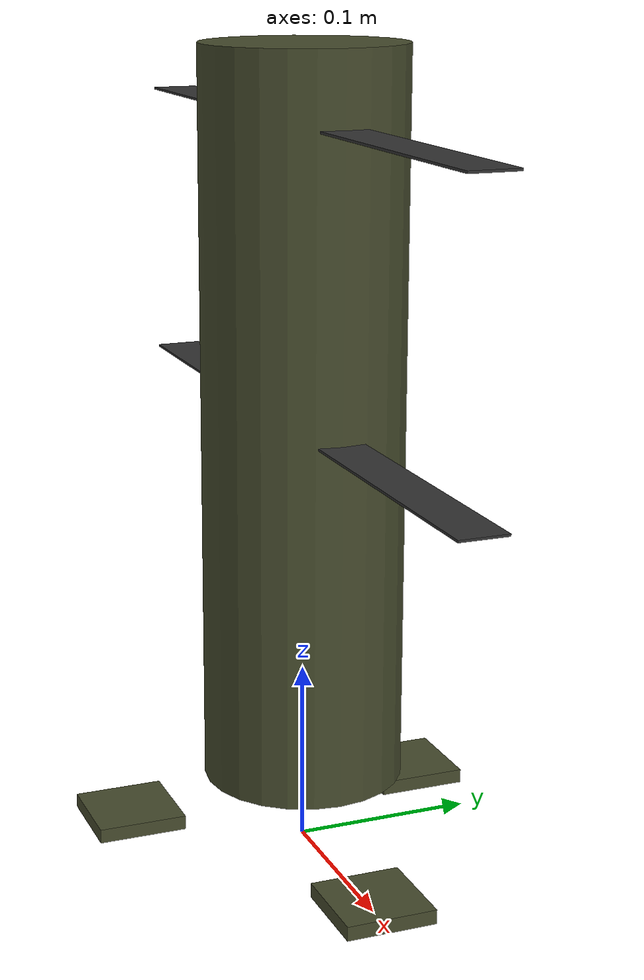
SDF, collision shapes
<?xml version="1.0" encoding="UTF-8"?>
<sdf version='1.9'>
  <model name='coaxial_top_tilt'>
    <pose>0 0 0.140 0 0 0</pose>
    <self_collide>false</self_collide>
    <static>false</static>

    <!-- ================================================================
         BASE LINK
         ================================================================ -->
    <link name="base_link">
      <inertial>
        <mass>2.0</mass>
        <inertia>
          <ixx>0.0133</ixx>
          <ixy>0</ixy>
          <ixz>0</ixz>
          <iyy>0.0133</iyy>
          <iyz>0</iyz>
          <izz>0.0132</izz>
        </inertia>
      </inertial>
      <gravity>true</gravity>
      <velocity_decay />

      <!-- ── LOWER BODY  z=−0.100 to z=+0.100  (20 cm) ── -->
      <visual name="lower_body">
        <pose>0 0 0 0 0 0</pose>
        <geometry>
          <cylinder>
            <radius>0.050</radius>
            <length>0.200</length>
          </cylinder>
        </geometry>
        <material>
          <ambient>0.22 0.25 0.15 1</ambient>
          <diffuse>0.28 0.30 0.18 1</diffuse>
          <specular>0.05 0.05 0.05 1</specular>
        </material>
      </visual>

      <!-- ── MIDDLE BODY  z=+0.100 to z=+0.260  (16 cm) ── -->
      <visual name="middle_body">
        <pose>0 0 0.180 0 0 0</pose>
        <geometry>
          <cylinder>
            <radius>0.050</radius>
            <length>0.160</length>
          </cylinder>
        </geometry>
        <material>
          <ambient>0.22 0.25 0.15 1</ambient>
          <diffuse>0.28 0.30 0.18 1</diffuse>
          <specular>0.05 0.05 0.05 1</specular>
        </material>
      </visual>

      <!-- ── TOP CAP  z=+0.260 to z=+0.300  (4 cm) ── -->
      <visual name="top_cap">
        <pose>0 0 0.280 0 0 0</pose>
        <geometry>
          <cylinder>
            <radius>0.050</radius>
            <length>0.040</length>
          </cylinder>
        </geometry>
        <material>
          <ambient>0.15 0.15 0.15 1</ambient>
          <diffuse>0.18 0.18 0.18 1</diffuse>
          <specular>0.08 0.08 0.08 1</specular>
        </material>
      </visual>

      <visual name="leg_0">
        <pose>0.075 0 -0.100 0 2.521 0</pose>
        <geometry>
          <cylinder>
            <radius>0.010</radius>
            <length>0.0860</length>
          </cylinder>
        </geometry>
        <material>
          <ambient>0.05 0.05 0.05 1</ambient>
          <diffuse>0.10 0.10 0.10 1</diffuse>
          <specular>0.02 0.02 0.02 1</specular>
        </material>
      </visual>

      <visual name="leg_1">
        <pose>-0.0375 0.06495 -0.100 0 2.521 2.094</pose>
        <geometry>
          <cylinder>
            <radius>0.010</radius>
            <length>0.0860</length>
          </cylinder>
        </geometry>
        <material>
          <ambient>0.05 0.05 0.05 1</ambient>
          <diffuse>0.10 0.10 0.10 1</diffuse>
          <specular>0.02 0.02 0.02 1</specular>
        </material>
      </visual>

      <visual name="leg_2">
        <pose>-0.0375 -0.06495 -0.100 0 2.521 -2.094</pose>
        <geometry>
          <cylinder>
            <radius>0.010</radius>
            <length>0.0860</length>
          </cylinder>
        </geometry>
        <material>
          <ambient>0.05 0.05 0.05 1</ambient>
          <diffuse>0.10 0.10 0.10 1</diffuse>
          <specular>0.02 0.02 0.02 1</specular>
        </material>
      </visual>

      <!--
        Ground skids — tangential box at each foot.
        yaw = π/2 + α:  foot_0=1.5708  foot_1=3.665  foot_2=5.760
      -->
      <visual name="foot_0">
        <pose>0.100 0 -0.135 0 0 1.5708</pose>
        <geometry>
          <box><size>0.06 0.010 0.008</size></box>
        </geometry>
        <material>
          <ambient>0.05 0.05 0.05 1</ambient>
          <diffuse>0.10 0.10 0.10 1</diffuse>
          <specular>0.02 0.02 0.02 1</specular>
        </material>
      </visual>

      <visual name="foot_1">
        <pose>-0.050 0.08660 -0.135 0 0 3.665</pose>
        <geometry>
          <box><size>0.06 0.010 0.008</size></box>
        </geometry>
        <material>
          <ambient>0.05 0.05 0.05 1</ambient>
          <diffuse>0.10 0.10 0.10 1</diffuse>
          <specular>0.02 0.02 0.02 1</specular>
        </material>
      </visual>

      <visual name="foot_2">
        <pose>-0.050 -0.08660 -0.135 0 0 5.760</pose>
        <geometry>
          <box><size>0.06 0.010 0.008</size></box>
        </geometry>
        <material>
          <ambient>0.05 0.05 0.05 1</ambient>
          <diffuse>0.10 0.10 0.10 1</diffuse>
          <specular>0.02 0.02 0.02 1</specular>
        </material>
      </visual>

      <!-- Body collision — single cylinder covering full 40 cm column -->
      <collision name="body_collision">
        <pose>0 0 0.100 0 0 0</pose>
        <geometry>
          <cylinder>
            <radius>0.055</radius>
            <length>0.400</length>
          </cylinder>
        </geometry>
        <surface>
          <contact><ode><min_depth>0.001</min_depth><max_vel>0</max_vel></ode></contact>
          <friction><ode /></friction>
        </surface>
      </collision>

      <!-- Foot collisions -->
      <collision name="foot_0_collision">
        <pose>0.100 0 -0.135 0 0 0</pose>
        <geometry><box><size>0.05 0.05 0.008</size></box></geometry>
        <surface>
          <contact><ode><min_depth>0.001</min_depth><max_vel>0</max_vel></ode></contact>
          <friction><ode /></friction>
        </surface>
      </collision>
      <collision name="foot_1_collision">
        <pose>-0.050 0.08660 -0.135 0 0 0</pose>
        <geometry><box><size>0.05 0.05 0.008</size></box></geometry>
        <surface>
          <contact><ode><min_depth>0.001</min_depth><max_vel>0</max_vel></ode></contact>
          <friction><ode /></friction>
        </surface>
      </collision>
      <collision name="foot_2_collision">
        <pose>-0.050 -0.08660 -0.135 0 0 0</pose>
        <geometry><box><size>0.05 0.05 0.008</size></box></geometry>
        <surface>
          <contact><ode><min_depth>0.001</min_depth><max_vel>0</max_vel></ode></contact>
          <friction><ode /></friction>
        </surface>
      </collision>

      <!-- Sensors -->
      <sensor name="air_pressure_sensor" type="air_pressure">
        <gz_frame_id>base_link</gz_frame_id>
        <always_on>1</always_on>
        <update_rate>50</update_rate>
        <air_pressure>
          <pressure>
            <noise type="gaussian"><mean>0</mean><stddev>3</stddev></noise>
          </pressure>
        </air_pressure>
      </sensor>
      <sensor name="magnetometer_sensor" type="magnetometer">
        <gz_frame_id>base_link</gz_frame_id>
        <always_on>1</always_on>
        <update_rate>100</update_rate>
        <magnetometer>
          <x><noise type="gaussian"><stddev>0.0001</stddev></noise></x>
          <y><noise type="gaussian"><stddev>0.0001</stddev></noise></y>
          <z><noise type="gaussian"><stddev>0.0001</stddev></noise></z>
        </magnetometer>
      </sensor>
      <sensor name="imu_sensor" type="imu">
        <gz_frame_id>base_link</gz_frame_id>
        <always_on>1</always_on>
        <update_rate>250</update_rate>
        <imu>
          <angular_velocity>
            <x><noise type="gaussian"><mean>0.0</mean><stddev>0.0008726646</stddev></noise></x>
            <y><noise type="gaussian"><mean>0.0</mean><stddev>0.0008726646</stddev></noise></y>
            <z><noise type="gaussian"><mean>0.0</mean><stddev>0.0008726646</stddev></noise></z>
          </angular_velocity>
          <linear_acceleration>
            <x><noise type="gaussian"><mean>0.0</mean><stddev>0.00637</stddev></noise></x>
            <y><noise type="gaussian"><mean>0.0</mean><stddev>0.00637</stddev></noise></y>
            <z><noise type="gaussian"><mean>0.0</mean><stddev>0.00686</stddev></noise></z>
          </linear_acceleration>
        </imu>
      </sensor>
      <sensor name="navsat_sensor" type="navsat">
        <gz_frame_id>base_link</gz_frame_id>
        <always_on>1</always_on>
        <update_rate>30</update_rate>
      </sensor>
    </link>

    <link name="tilt_pitch_link">
      <pose>0 0 0.180 0 0 0</pose>
      <inertial>
        <mass>0.01</mass>
        <inertia>
          <ixx>1e-05</ixx><ixy>0</ixy><ixz>0</ixz>
          <iyy>1e-05</iyy><iyz>0</iyz>
          <izz>1e-05</izz>
        </inertia>
      </inertial>
      <gravity>true</gravity>
      <velocity_decay />
    </link>
    <joint name="tilt_pitch_joint" type="revolute">
      <parent>base_link</parent>
      <child>tilt_pitch_link</child>
      <axis>
        <xyz>0 1 0</xyz>
        <limit>
          <lower>-0.5236</lower>
          <upper>0.5236</upper>
        </limit>
        <dynamics>
          <friction>0.1</friction>
          <spring_reference>0</spring_reference>
          <spring_stiffness>0</spring_stiffness>
        </dynamics>
      </axis>
    </joint>

    <link name="tilt_roll_link">
      <pose>0 0 0.180 0 0 0</pose>
      <inertial>
        <mass>0.01</mass>
        <inertia>
          <ixx>1e-05</ixx><ixy>0</ixy><ixz>0</ixz>
          <iyy>1e-05</iyy><iyz>0</iyz>
          <izz>1e-05</izz>
        </inertia>
      </inertial>
      <gravity>true</gravity>
      <velocity_decay />
    </link>
    <joint name="tilt_roll_joint" type="revolute">
      <parent>tilt_pitch_link</parent>
      <child>tilt_roll_link</child>
      <axis>
        <xyz>1 0 0</xyz>
        <limit>
          <lower>-0.5236</lower>
          <upper>0.5236</upper>
        </limit>
        <dynamics>
          <friction>0.1</friction>
          <spring_reference>0</spring_reference>
          <spring_stiffness>0</spring_stiffness>
        </dynamics>
      </axis>
    </joint>

    <link name="rotor_0">
      <pose>0 0 0.100 0 0 0</pose>
      <inertial>
        <mass>0.016076923076923075</mass>
        <inertia>
          <ixx>3.8464910483993325e-07</ixx><ixy>0</ixy><ixz>0</ixz>
          <iyy>2.6115851691700804e-05</iyy><iyz>0</iyz>
          <izz>2.649858234714004e-05</izz>
        </inertia>
      </inertial>
      <gravity>true</gravity>
      <velocity_decay />
      <visual name="rotor_0_visual">
        <pose>-0.0338 -0.2249 -0.0246 0 0 0</pose>
        <geometry>
          <mesh>
            <scale>1.3 1.3 1.3</scale>
            <uri>model://x500_base/meshes/1345_prop_cw.stl</uri>
          </mesh>
        </geometry>
        <material>
          <ambient>0.15 0.15 0.15 1</ambient>
          <diffuse>0.20 0.20 0.20 1</diffuse>
          <specular>0.05 0.05 0.05 1</specular>
        </material>
      </visual>
      <visual name="rotor_0_motor_bell">
        <pose>0 0 -0.032 0 0 0</pose>
        <geometry>
          <mesh>
            <scale>1 1 1</scale>
            <uri>model://x500_base/meshes/5010Bell.dae</uri>
          </mesh>
        </geometry>
      </visual>
      <collision name="rotor_0_collision">
        <pose>0 0 0 0 0 0</pose>
        <geometry>
          <box><size>0.4289 0.0260 0.0013</size></box>
        </geometry>
        <surface>
          <contact><ode><min_depth>0.001</min_depth><max_vel>0</max_vel></ode></contact>
          <friction><ode /></friction>
        </surface>
      </collision>
    </link>
    <joint name="rotor_0_joint" type="revolute">
      <parent>base_link</parent>
      <child>rotor_0</child>
      <axis>
        <xyz>0 0 1</xyz>
        <limit><lower>-1e+16</lower><upper>1e+16</upper></limit>
        <dynamics><spring_reference>0</spring_reference><spring_stiffness>0</spring_stiffness></dynamics>
      </axis>
    </joint>

    <link name="rotor_1">
      <pose>0 0 0.260 0 0 0</pose>
      <inertial>
        <mass>0.016076923076923075</mass>
        <inertia>
          <ixx>3.8464910483993325e-07</ixx><ixy>0</ixy><ixz>0</ixz>
          <iyy>2.6115851691700804e-05</iyy><iyz>0</iyz>
          <izz>2.649858234714004e-05</izz>
        </inertia>
      </inertial>
      <gravity>true</gravity>
      <velocity_decay />
      <visual name="rotor_1_visual">
        <pose>-0.0338 -0.2249 -0.0246 0 0 0</pose>
        <geometry>
          <mesh>
            <scale>1.3 1.3 1.3</scale>
            <uri>model://x500_base/meshes/1345_prop_ccw.stl</uri>
          </mesh>
        </geometry>
        <material>
          <ambient>0.15 0.15 0.15 1</ambient>
          <diffuse>0.20 0.20 0.20 1</diffuse>
          <specular>0.05 0.05 0.05 1</specular>
        </material>
      </visual>
      <visual name="rotor_1_motor_bell">
        <pose>0 0 -0.032 0 0 0</pose>
        <geometry>
          <mesh>
            <scale>1 1 1</scale>
            <uri>model://x500_base/meshes/5010Bell.dae</uri>
          </mesh>
        </geometry>
      </visual>
      <collision name="rotor_1_collision">
        <pose>0 0 0 0 0 0</pose>
        <geometry>
          <box><size>0.4289 0.0260 0.0013</size></box>
        </geometry>
        <surface>
          <contact><ode><min_depth>0.001</min_depth><max_vel>0</max_vel></ode></contact>
          <friction><ode /></friction>
        </surface>
      </collision>
    </link>
    <joint name="rotor_1_joint" type="revolute">
      <parent>tilt_roll_link</parent>
      <child>rotor_1</child>
      <axis>
        <xyz>0 0 1</xyz>
        <limit><lower>-1e+16</lower><upper>1e+16</upper></limit>
        <dynamics><spring_reference>0</spring_reference><spring_stiffness>0</spring_stiffness></dynamics>
      </axis>
    </joint>

    <!-- ================================================================
         MOTOR PLUGINS
         ================================================================ -->

    <plugin filename="gz-sim-multicopter-motor-model-system"
      name="gz::sim::systems::MulticopterMotorModel">
      <jointName>rotor_0_joint</jointName>
      <linkName>rotor_0</linkName>
      <turningDirection>cw</turningDirection>
      <timeConstantUp>0.0125</timeConstantUp>
      <timeConstantDown>0.025</timeConstantDown>
      <maxRotVelocity>1000.0</maxRotVelocity>
      <motorConstant>1.71e-05</motorConstant>
      <momentConstant>0.032</momentConstant>
      <commandSubTopic>command/motor_speed</commandSubTopic>
      <motorNumber>0</motorNumber>
      <rotorDragCoefficient>1.6128e-04</rotorDragCoefficient>
      <rollingMomentCoefficient>2e-06</rollingMomentCoefficient>
      <rotorVelocitySlowdownSim>10</rotorVelocitySlowdownSim>
      <motorType>velocity</motorType>
    </plugin>

    <plugin filename="gz-sim-multicopter-motor-model-system"
      name="gz::sim::systems::MulticopterMotorModel">
      <jointName>rotor_1_joint</jointName>
      <linkName>rotor_1</linkName>
      <turningDirection>ccw</turningDirection>
      <timeConstantUp>0.0125</timeConstantUp>
      <timeConstantDown>0.025</timeConstantDown>
      <maxRotVelocity>1000.0</maxRotVelocity>
      <motorConstant>1.71e-05</motorConstant>
      <momentConstant>0.032</momentConstant>
      <commandSubTopic>command/motor_speed</commandSubTopic>
      <motorNumber>1</motorNumber>
      <rotorDragCoefficient>1.6128e-04</rotorDragCoefficient>
      <rollingMomentCoefficient>2e-06</rollingMomentCoefficient>
      <rotorVelocitySlowdownSim>10</rotorVelocitySlowdownSim>
      <motorType>velocity</motorType>
    </plugin>

    <!-- ================================================================
         TILT SERVO PLUGINS
         ================================================================ -->

    <plugin
      filename="gz-sim-joint-position-controller-system"
      name="gz::sim::systems::JointPositionController">
      <joint_name>tilt_pitch_joint</joint_name>
      <sub_topic>servo_0</sub_topic>
      <p_gain>10</p_gain>
      <i_gain>0</i_gain>
      <d_gain>0</d_gain>
      <i_max>0.0</i_max>
      <i_min>0.0</i_min>
      <cmd_max>2</cmd_max>
      <cmd_min>-2</cmd_min>
      <err_max>0.2</err_max>
    </plugin>

    <plugin
      filename="gz-sim-joint-position-controller-system"
      name="gz::sim::systems::JointPositionController">
      <joint_name>tilt_roll_joint</joint_name>
      <sub_topic>servo_1</sub_topic>
      <p_gain>10</p_gain>
      <i_gain>0</i_gain>
      <d_gain>0</d_gain>
      <i_max>0.0</i_max>
      <i_min>0.0</i_min>
      <cmd_max>2</cmd_max>
      <cmd_min>-2</cmd_min>
      <err_max>0.2</err_max>
    </plugin>

  </model>
</sdf>
